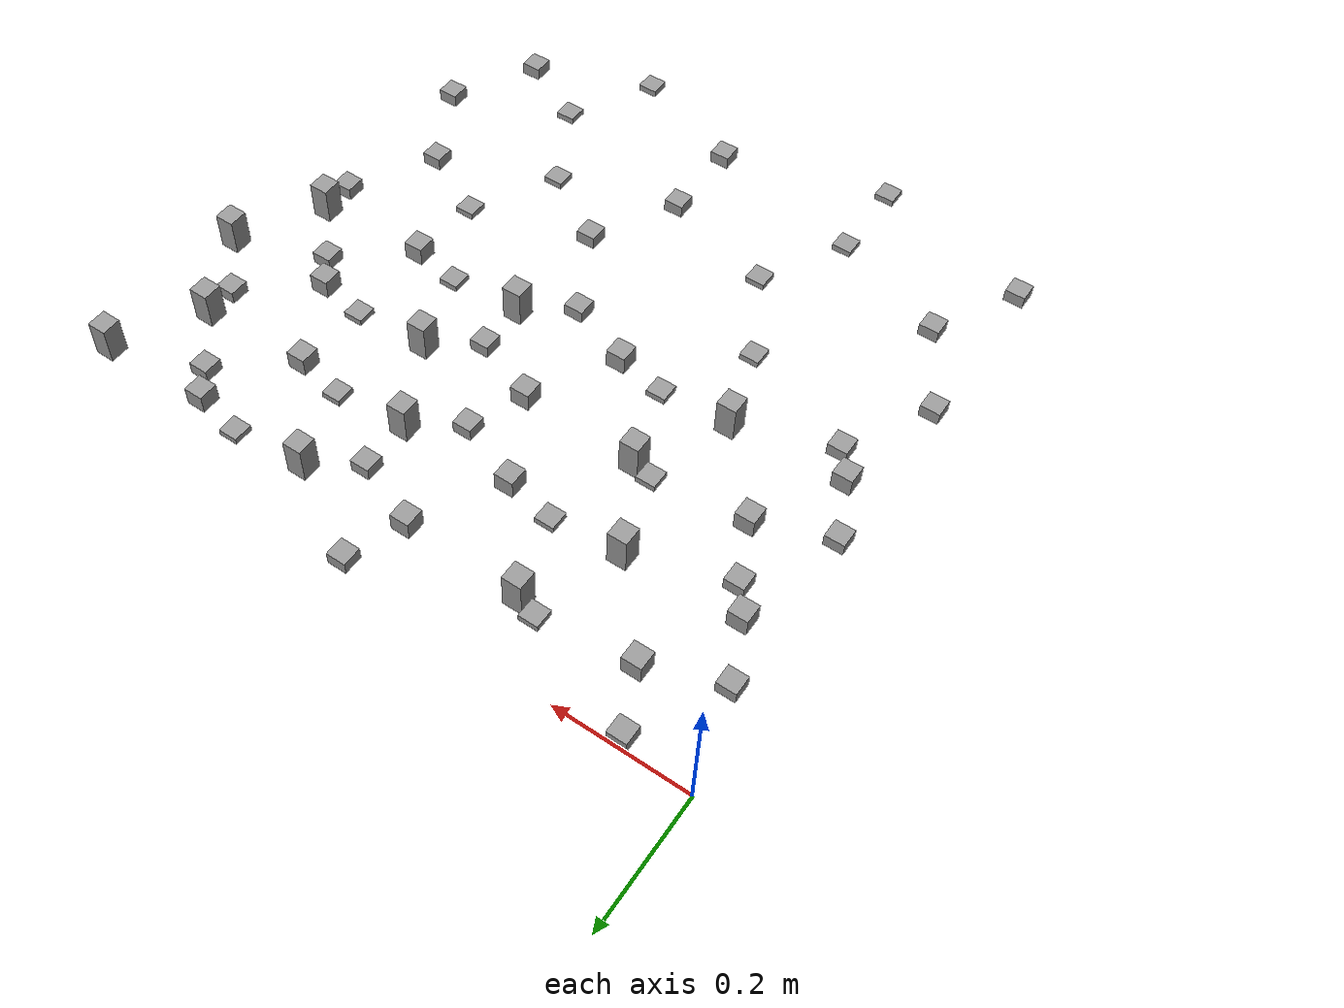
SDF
<sdf version="1.5">
 <world name="default">
  <model name="unit_box_48">
   <pose>0.0800000000000002 -0.5 0 0 0 0</pose>
   <link name="link">
    <inertial>
     <mass>1</mass>
     <inertia><ixx>0</ixx><ixy>0</ixy><ixz>0</ixz><iyy>0</iyy><iyz>0</iyz><izz>0</izz></inertia>
    </inertial>
    <collision name="collision"><geometry><box><size>0.03 0.03 0.03</size></box></geometry></collision>
    <visual name="visual">
     <geometry><box><size>0.03 0.03 0.03</size></box></geometry>
     <material>
      <script><name>Gazebo/Grey</name><uri>file://media/materials/scripts/gazebo.material</uri></script>
     </material>
    </visual>
   </link>
  </model>
  <model name="unit_box_49">
   <pose>0.15 -0.37 0 0 0 0</pose>
   <link name="link">
    <inertial>
     <mass>1</mass>
     <inertia><ixx>0</ixx><ixy>0</ixy><ixz>0</ixz><iyy>0</iyy><iyz>0</iyz><izz>0</izz></inertia>
    </inertial>
    <collision name="collision"><geometry><box><size>0.03 0.03 0.03</size></box></geometry></collision>
    <visual name="visual">
     <geometry><box><size>0.03 0.03 0.03</size></box></geometry>
     <material>
      <script><name>Gazebo/Grey</name><uri>file://media/materials/scripts/gazebo.material</uri></script>
     </material>
    </visual>
   </link>
  </model>
  <model name="unit_box_50">
   <pose>0.0800000000000002 -0.24 0 0 0 0</pose>
   <link name="link">
    <inertial>
     <mass>1</mass>
     <inertia><ixx>0</ixx><ixy>0</ixy><ixz>0</ixz><iyy>0</iyy><iyz>0</iyz><izz>0</izz></inertia>
    </inertial>
    <collision name="collision"><geometry><box><size>0.03 0.03 0.03</size></box></geometry></collision>
    <visual name="visual">
     <geometry><box><size>0.03 0.03 0.03</size></box></geometry>
     <material>
      <script><name>Gazebo/Grey</name><uri>file://media/materials/scripts/gazebo.material</uri></script>
     </material>
    </visual>
   </link>
  </model>
  <model name="unit_box_51">
   <pose>0.15 -0.11 0 0 0 0</pose>
   <link name="link">
    <inertial>
     <mass>1</mass>
     <inertia><ixx>0</ixx><ixy>0</ixy><ixz>0</ixz><iyy>0</iyy><iyz>0</iyz><izz>0</izz></inertia>
    </inertial>
    <collision name="collision"><geometry><box><size>0.03 0.03 0.03</size></box></geometry></collision>
    <visual name="visual">
     <geometry><box><size>0.03 0.03 0.03</size></box></geometry>
     <material>
      <script><name>Gazebo/Grey</name><uri>file://media/materials/scripts/gazebo.material</uri></script>
     </material>
    </visual>
   </link>
  </model>
  <model name="unit_box_56">
   <pose>0.26 -0.5 0 0 0 0</pose>
   <link name="link">
    <inertial>
     <mass>1</mass>
     <inertia><ixx>0</ixx><ixy>0</ixy><ixz>0</ixz><iyy>0</iyy><iyz>0</iyz><izz>0</izz></inertia>
    </inertial>
    <collision name="collision"><geometry><box><size>0.03 0.03 0.06</size></box></geometry></collision>
    <visual name="visual">
     <geometry><box><size>0.03 0.03 0.06</size></box></geometry>
     <material>
      <script><name>Gazebo/Grey</name><uri>file://media/materials/scripts/gazebo.material</uri></script>
     </material>
    </visual>
   </link>
  </model>
  <model name="unit_box_57">
   <pose>0.33 -0.37 0 0 0 0</pose>
   <link name="link">
    <inertial>
     <mass>1</mass>
     <inertia><ixx>0</ixx><ixy>0</ixy><ixz>0</ixz><iyy>0</iyy><iyz>0</iyz><izz>0</izz></inertia>
    </inertial>
    <collision name="collision"><geometry><box><size>0.03 0.03 0.06</size></box></geometry></collision>
    <visual name="visual">
     <geometry><box><size>0.03 0.03 0.06</size></box></geometry>
     <material>
      <script><name>Gazebo/Grey</name><uri>file://media/materials/scripts/gazebo.material</uri></script>
     </material>
    </visual>
   </link>
  </model>
  <model name="unit_box_58">
   <pose>0.26 -0.24 0 0 0 0</pose>
   <link name="link">
    <inertial>
     <mass>1</mass>
     <inertia><ixx>0</ixx><ixy>0</ixy><ixz>0</ixz><iyy>0</iyy><iyz>0</iyz><izz>0</izz></inertia>
    </inertial>
    <collision name="collision"><geometry><box><size>0.03 0.03 0.06</size></box></geometry></collision>
    <visual name="visual">
     <geometry><box><size>0.03 0.03 0.06</size></box></geometry>
     <material>
      <script><name>Gazebo/Grey</name><uri>file://media/materials/scripts/gazebo.material</uri></script>
     </material>
    </visual>
   </link>
  </model>
  <model name="unit_box_59">
   <pose>0.33 -0.11 0 0 0 0</pose>
   <link name="link">
    <inertial>
     <mass>1</mass>
     <inertia><ixx>0</ixx><ixy>0</ixy><ixz>0</ixz><iyy>0</iyy><iyz>0</iyz><izz>0</izz></inertia>
    </inertial>
    <collision name="collision"><geometry><box><size>0.03 0.03 0.06</size></box></geometry></collision>
    <visual name="visual">
     <geometry><box><size>0.03 0.03 0.06</size></box></geometry>
     <material>
      <script><name>Gazebo/Grey</name><uri>file://media/materials/scripts/gazebo.material</uri></script>
     </material>
    </visual>
   </link>
  </model>
  <model name="unit_box_64">
   <pose>0.44 -0.5 0 0 0 0</pose>
   <link name="link">
    <inertial>
     <mass>1</mass>
     <inertia><ixx>0</ixx><ixy>0</ixy><ixz>0</ixz><iyy>0</iyy><iyz>0</iyz><izz>0</izz></inertia>
    </inertial>
    <collision name="collision"><geometry><box><size>0.03 0.03 0.03</size></box></geometry></collision>
    <visual name="visual">
     <geometry><box><size>0.03 0.03 0.03</size></box></geometry>
     <material>
      <script><name>Gazebo/Grey</name><uri>file://media/materials/scripts/gazebo.material</uri></script>
     </material>
    </visual>
   </link>
  </model>
  <model name="unit_box_65">
   <pose>0.51 -0.37 0 0 0 0</pose>
   <link name="link">
    <inertial>
     <mass>1</mass>
     <inertia><ixx>0</ixx><ixy>0</ixy><ixz>0</ixz><iyy>0</iyy><iyz>0</iyz><izz>0</izz></inertia>
    </inertial>
    <collision name="collision"><geometry><box><size>0.03 0.03 0.03</size></box></geometry></collision>
    <visual name="visual">
     <geometry><box><size>0.03 0.03 0.03</size></box></geometry>
     <material>
      <script><name>Gazebo/Grey</name><uri>file://media/materials/scripts/gazebo.material</uri></script>
     </material>
    </visual>
   </link>
  </model>
  <model name="unit_box_66">
   <pose>0.44 -0.24 0 0 0 0</pose>
   <link name="link">
    <inertial>
     <mass>1</mass>
     <inertia><ixx>0</ixx><ixy>0</ixy><ixz>0</ixz><iyy>0</iyy><iyz>0</iyz><izz>0</izz></inertia>
    </inertial>
    <collision name="collision"><geometry><box><size>0.03 0.03 0.03</size></box></geometry></collision>
    <visual name="visual">
     <geometry><box><size>0.03 0.03 0.03</size></box></geometry>
     <material>
      <script><name>Gazebo/Grey</name><uri>file://media/materials/scripts/gazebo.material</uri></script>
     </material>
    </visual>
   </link>
  </model>
  <model name="unit_box_67">
   <pose>0.51 -0.11 0 0 0 0</pose>
   <link name="link">
    <inertial>
     <mass>1</mass>
     <inertia><ixx>0</ixx><ixy>0</ixy><ixz>0</ixz><iyy>0</iyy><iyz>0</iyz><izz>0</izz></inertia>
    </inertial>
    <collision name="collision"><geometry><box><size>0.03 0.03 0.03</size></box></geometry></collision>
    <visual name="visual">
     <geometry><box><size>0.03 0.03 0.03</size></box></geometry>
     <material>
      <script><name>Gazebo/Grey</name><uri>file://media/materials/scripts/gazebo.material</uri></script>
     </material>
    </visual>
   </link>
  </model>
  <model name="unit_box_72">
   <pose>0.62 -0.5 0 0 0 0</pose>
   <link name="link">
    <inertial>
     <mass>1</mass>
     <inertia><ixx>0</ixx><ixy>0</ixy><ixz>0</ixz><iyy>0</iyy><iyz>0</iyz><izz>0</izz></inertia>
    </inertial>
    <collision name="collision"><geometry><box><size>0.03 0.03 0.06</size></box></geometry></collision>
    <visual name="visual">
     <geometry><box><size>0.03 0.03 0.06</size></box></geometry>
     <material>
      <script><name>Gazebo/Grey</name><uri>file://media/materials/scripts/gazebo.material</uri></script>
     </material>
    </visual>
   </link>
  </model>
  <model name="unit_box_73">
   <pose>0.69 -0.37 0 0 0 0</pose>
   <link name="link">
    <inertial>
     <mass>1</mass>
     <inertia><ixx>0</ixx><ixy>0</ixy><ixz>0</ixz><iyy>0</iyy><iyz>0</iyz><izz>0</izz></inertia>
    </inertial>
    <collision name="collision"><geometry><box><size>0.03 0.03 0.06</size></box></geometry></collision>
    <visual name="visual">
     <geometry><box><size>0.03 0.03 0.06</size></box></geometry>
     <material>
      <script><name>Gazebo/Grey</name><uri>file://media/materials/scripts/gazebo.material</uri></script>
     </material>
    </visual>
   </link>
  </model>
  <model name="unit_box_74">
   <pose>0.62 -0.24 0 0 0 0</pose>
   <link name="link">
    <inertial>
     <mass>1</mass>
     <inertia><ixx>0</ixx><ixy>0</ixy><ixz>0</ixz><iyy>0</iyy><iyz>0</iyz><izz>0</izz></inertia>
    </inertial>
    <collision name="collision"><geometry><box><size>0.03 0.03 0.06</size></box></geometry></collision>
    <visual name="visual">
     <geometry><box><size>0.03 0.03 0.06</size></box></geometry>
     <material>
      <script><name>Gazebo/Grey</name><uri>file://media/materials/scripts/gazebo.material</uri></script>
     </material>
    </visual>
   </link>
  </model>
  <model name="unit_box_75">
   <pose>0.69 -0.11 0 0 0 0</pose>
   <link name="link">
    <inertial>
     <mass>1</mass>
     <inertia><ixx>0</ixx><ixy>0</ixy><ixz>0</ixz><iyy>0</iyy><iyz>0</iyz><izz>0</izz></inertia>
    </inertial>
    <collision name="collision"><geometry><box><size>0.03 0.03 0.06</size></box></geometry></collision>
    <visual name="visual">
     <geometry><box><size>0.03 0.03 0.06</size></box></geometry>
     <material>
      <script><name>Gazebo/Grey</name><uri>file://media/materials/scripts/gazebo.material</uri></script>
     </material>
    </visual>
   </link>
  </model>
  <model name="unit_box_80">
   <pose>0.8 -0.5 0 0 0 0</pose>
   <link name="link">
    <inertial>
     <mass>1</mass>
     <inertia><ixx>0</ixx><ixy>0</ixy><ixz>0</ixz><iyy>0</iyy><iyz>0</iyz><izz>0</izz></inertia>
    </inertial>
    <collision name="collision"><geometry><box><size>0.03 0.03 0.03</size></box></geometry></collision>
    <visual name="visual">
     <geometry><box><size>0.03 0.03 0.03</size></box></geometry>
     <material>
      <script><name>Gazebo/Grey</name><uri>file://media/materials/scripts/gazebo.material</uri></script>
     </material>
    </visual>
   </link>
  </model>
  <model name="unit_box_81">
   <pose>0.87 -0.37 0 0 0 0</pose>
   <link name="link">
    <inertial>
     <mass>1</mass>
     <inertia><ixx>0</ixx><ixy>0</ixy><ixz>0</ixz><iyy>0</iyy><iyz>0</iyz><izz>0</izz></inertia>
    </inertial>
    <collision name="collision"><geometry><box><size>0.03 0.03 0.03</size></box></geometry></collision>
    <visual name="visual">
     <geometry><box><size>0.03 0.03 0.03</size></box></geometry>
     <material>
      <script><name>Gazebo/Grey</name><uri>file://media/materials/scripts/gazebo.material</uri></script>
     </material>
    </visual>
   </link>
  </model>
  <model name="unit_box_82">
   <pose>0.8 -0.24 0 0 0 0</pose>
   <link name="link">
    <inertial>
     <mass>1</mass>
     <inertia><ixx>0</ixx><ixy>0</ixy><ixz>0</ixz><iyy>0</iyy><iyz>0</iyz><izz>0</izz></inertia>
    </inertial>
    <collision name="collision"><geometry><box><size>0.03 0.03 0.03</size></box></geometry></collision>
    <visual name="visual">
     <geometry><box><size>0.03 0.03 0.03</size></box></geometry>
     <material>
      <script><name>Gazebo/Grey</name><uri>file://media/materials/scripts/gazebo.material</uri></script>
     </material>
    </visual>
   </link>
  </model>
  <model name="unit_box_83">
   <pose>0.87 -0.11 0 0 0 0</pose>
   <link name="link">
    <inertial>
     <mass>1</mass>
     <inertia><ixx>0</ixx><ixy>0</ixy><ixz>0</ixz><iyy>0</iyy><iyz>0</iyz><izz>0</izz></inertia>
    </inertial>
    <collision name="collision"><geometry><box><size>0.03 0.03 0.03</size></box></geometry></collision>
    <visual name="visual">
     <geometry><box><size>0.03 0.03 0.03</size></box></geometry>
     <material>
      <script><name>Gazebo/Grey</name><uri>file://media/materials/scripts/gazebo.material</uri></script>
     </material>
    </visual>
   </link>
  </model>
  <model name="unit_box_88">
   <pose>0.98 -0.5 0 0 0 0</pose>
   <link name="link">
    <inertial>
     <mass>1</mass>
     <inertia><ixx>0</ixx><ixy>0</ixy><ixz>0</ixz><iyy>0</iyy><iyz>0</iyz><izz>0</izz></inertia>
    </inertial>
    <collision name="collision"><geometry><box><size>0.03 0.03 0.06</size></box></geometry></collision>
    <visual name="visual">
     <geometry><box><size>0.03 0.03 0.06</size></box></geometry>
     <material>
      <script><name>Gazebo/Grey</name><uri>file://media/materials/scripts/gazebo.material</uri></script>
     </material>
    </visual>
   </link>
  </model>
  <model name="unit_box_89">
   <pose>1.05 -0.37 0 0 0 0</pose>
   <link name="link">
    <inertial>
     <mass>1</mass>
     <inertia><ixx>0</ixx><ixy>0</ixy><ixz>0</ixz><iyy>0</iyy><iyz>0</iyz><izz>0</izz></inertia>
    </inertial>
    <collision name="collision"><geometry><box><size>0.03 0.03 0.06</size></box></geometry></collision>
    <visual name="visual">
     <geometry><box><size>0.03 0.03 0.06</size></box></geometry>
     <material>
      <script><name>Gazebo/Grey</name><uri>file://media/materials/scripts/gazebo.material</uri></script>
     </material>
    </visual>
   </link>
  </model>
  <model name="unit_box_90">
   <pose>0.98 -0.24 0 0 0 0</pose>
   <link name="link">
    <inertial>
     <mass>1</mass>
     <inertia><ixx>0</ixx><ixy>0</ixy><ixz>0</ixz><iyy>0</iyy><iyz>0</iyz><izz>0</izz></inertia>
    </inertial>
    <collision name="collision"><geometry><box><size>0.03 0.03 0.06</size></box></geometry></collision>
    <visual name="visual">
     <geometry><box><size>0.03 0.03 0.06</size></box></geometry>
     <material>
      <script><name>Gazebo/Grey</name><uri>file://media/materials/scripts/gazebo.material</uri></script>
     </material>
    </visual>
   </link>
  </model>
  <model name="unit_box_91">
   <pose>1.05 -0.11 0 0 0 0</pose>
   <link name="link">
    <inertial>
     <mass>1</mass>
     <inertia><ixx>0</ixx><ixy>0</ixy><ixz>0</ixz><iyy>0</iyy><iyz>0</iyz><izz>0</izz></inertia>
    </inertial>
    <collision name="collision"><geometry><box><size>0.03 0.03 0.06</size></box></geometry></collision>
    <visual name="visual">
     <geometry><box><size>0.03 0.03 0.06</size></box></geometry>
     <material>
      <script><name>Gazebo/Grey</name><uri>file://media/materials/scripts/gazebo.material</uri></script>
     </material>
    </visual>
   </link>
  </model>
  <model name="unit_box_78">
   <pose>0.0400000000000001 -0.93 0 0 0 0</pose>
   <link name="link">
    <inertial>
     <mass>1</mass>
     <inertia><ixx>0</ixx><ixy>0</ixy><ixz>0</ixz><iyy>0</iyy><iyz>0</iyz><izz>0</izz></inertia>
    </inertial>
    <collision name="collision"><geometry><box><size>0.03 0.03 0.02</size></box></geometry></collision>
    <visual name="visual">
     <geometry><box><size>0.03 0.03 0.02</size></box></geometry>
     <material>
      <script><name>Gazebo/Grey</name><uri>file://media/materials/scripts/gazebo.material</uri></script>
     </material>
    </visual>
   </link>
  </model>
  <model name="unit_box_79">
   <pose>0.11 -0.8 0 0 0 0</pose>
   <link name="link">
    <inertial>
     <mass>1</mass>
     <inertia><ixx>0</ixx><ixy>0</ixy><ixz>0</ixz><iyy>0</iyy><iyz>0</iyz><izz>0</izz></inertia>
    </inertial>
    <collision name="collision"><geometry><box><size>0.03 0.03 0.02</size></box></geometry></collision>
    <visual name="visual">
     <geometry><box><size>0.03 0.03 0.02</size></box></geometry>
     <material>
      <script><name>Gazebo/Grey</name><uri>file://media/materials/scripts/gazebo.material</uri></script>
     </material>
    </visual>
   </link>
  </model>
  <model name="unit_box_80">
   <pose>0.0400000000000001 -0.67 0 0 0 0</pose>
   <link name="link">
    <inertial>
     <mass>1</mass>
     <inertia><ixx>0</ixx><ixy>0</ixy><ixz>0</ixz><iyy>0</iyy><iyz>0</iyz><izz>0</izz></inertia>
    </inertial>
    <collision name="collision"><geometry><box><size>0.03 0.03 0.02</size></box></geometry></collision>
    <visual name="visual">
     <geometry><box><size>0.03 0.03 0.02</size></box></geometry>
     <material>
      <script><name>Gazebo/Grey</name><uri>file://media/materials/scripts/gazebo.material</uri></script>
     </material>
    </visual>
   </link>
  </model>
  <model name="unit_box_81">
   <pose>0.11 -0.54 0 0 0 0</pose>
   <link name="link">
    <inertial>
     <mass>1</mass>
     <inertia><ixx>0</ixx><ixy>0</ixy><ixz>0</ixz><iyy>0</iyy><iyz>0</iyz><izz>0</izz></inertia>
    </inertial>
    <collision name="collision"><geometry><box><size>0.03 0.03 0.02</size></box></geometry></collision>
    <visual name="visual">
     <geometry><box><size>0.03 0.03 0.02</size></box></geometry>
     <material>
      <script><name>Gazebo/Grey</name><uri>file://media/materials/scripts/gazebo.material</uri></script>
     </material>
    </visual>
   </link>
  </model>
  <model name="unit_box_82">
   <pose>0.0400000000000001 -0.41 0 0 0 0</pose>
   <link name="link">
    <inertial>
     <mass>1</mass>
     <inertia><ixx>0</ixx><ixy>0</ixy><ixz>0</ixz><iyy>0</iyy><iyz>0</iyz><izz>0</izz></inertia>
    </inertial>
    <collision name="collision"><geometry><box><size>0.03 0.03 0.02</size></box></geometry></collision>
    <visual name="visual">
     <geometry><box><size>0.03 0.03 0.02</size></box></geometry>
     <material>
      <script><name>Gazebo/Grey</name><uri>file://media/materials/scripts/gazebo.material</uri></script>
     </material>
    </visual>
   </link>
  </model>
  <model name="unit_box_83">
   <pose>0.11 -0.28 0 0 0 0</pose>
   <link name="link">
    <inertial>
     <mass>1</mass>
     <inertia><ixx>0</ixx><ixy>0</ixy><ixz>0</ixz><iyy>0</iyy><iyz>0</iyz><izz>0</izz></inertia>
    </inertial>
    <collision name="collision"><geometry><box><size>0.03 0.03 0.02</size></box></geometry></collision>
    <visual name="visual">
     <geometry><box><size>0.03 0.03 0.02</size></box></geometry>
     <material>
      <script><name>Gazebo/Grey</name><uri>file://media/materials/scripts/gazebo.material</uri></script>
     </material>
    </visual>
   </link>
  </model>
  <model name="unit_box_84">
   <pose>0.0400000000000001 -0.15 0 0 0 0</pose>
   <link name="link">
    <inertial>
     <mass>1</mass>
     <inertia><ixx>0</ixx><ixy>0</ixy><ixz>0</ixz><iyy>0</iyy><iyz>0</iyz><izz>0</izz></inertia>
    </inertial>
    <collision name="collision"><geometry><box><size>0.03 0.03 0.02</size></box></geometry></collision>
    <visual name="visual">
     <geometry><box><size>0.03 0.03 0.02</size></box></geometry>
     <material>
      <script><name>Gazebo/Grey</name><uri>file://media/materials/scripts/gazebo.material</uri></script>
     </material>
    </visual>
   </link>
  </model>
  <model name="unit_box_85">
   <pose>0.11 -0.02 0 0 0 0</pose>
   <link name="link">
    <inertial>
     <mass>1</mass>
     <inertia><ixx>0</ixx><ixy>0</ixy><ixz>0</ixz><iyy>0</iyy><iyz>0</iyz><izz>0</izz></inertia>
    </inertial>
    <collision name="collision"><geometry><box><size>0.03 0.03 0.02</size></box></geometry></collision>
    <visual name="visual">
     <geometry><box><size>0.03 0.03 0.02</size></box></geometry>
     <material>
      <script><name>Gazebo/Grey</name><uri>file://media/materials/scripts/gazebo.material</uri></script>
     </material>
    </visual>
   </link>
  </model>
  <model name="unit_box_93">
   <pose>0.29 -1 0 0 0 0</pose>
   <link name="link">
    <inertial>
     <mass>1</mass>
     <inertia><ixx>0</ixx><ixy>0</ixy><ixz>0</ixz><iyy>0</iyy><iyz>0</iyz><izz>0</izz></inertia>
    </inertial>
    <collision name="collision"><geometry><box><size>0.03 0.03 0.01</size></box></geometry></collision>
    <visual name="visual">
     <geometry><box><size>0.03 0.03 0.01</size></box></geometry>
     <material>
      <script><name>Gazebo/Grey</name><uri>file://media/materials/scripts/gazebo.material</uri></script>
     </material>
    </visual>
   </link>
  </model>
  <model name="unit_box_94">
   <pose>0.29 -0.87 0 0 0 0</pose>
   <link name="link">
    <inertial>
     <mass>1</mass>
     <inertia><ixx>0</ixx><ixy>0</ixy><ixz>0</ixz><iyy>0</iyy><iyz>0</iyz><izz>0</izz></inertia>
    </inertial>
    <collision name="collision"><geometry><box><size>0.03 0.03 0.01</size></box></geometry></collision>
    <visual name="visual">
     <geometry><box><size>0.03 0.03 0.01</size></box></geometry>
     <material>
      <script><name>Gazebo/Grey</name><uri>file://media/materials/scripts/gazebo.material</uri></script>
     </material>
    </visual>
   </link>
  </model>
  <model name="unit_box_95">
   <pose>0.36 -0.74 0 0 0 0</pose>
   <link name="link">
    <inertial>
     <mass>1</mass>
     <inertia><ixx>0</ixx><ixy>0</ixy><ixz>0</ixz><iyy>0</iyy><iyz>0</iyz><izz>0</izz></inertia>
    </inertial>
    <collision name="collision"><geometry><box><size>0.03 0.03 0.01</size></box></geometry></collision>
    <visual name="visual">
     <geometry><box><size>0.03 0.03 0.01</size></box></geometry>
     <material>
      <script><name>Gazebo/Grey</name><uri>file://media/materials/scripts/gazebo.material</uri></script>
     </material>
    </visual>
   </link>
  </model>
  <model name="unit_box_96">
   <pose>0.29 -0.61 0 0 0 0</pose>
   <link name="link">
    <inertial>
     <mass>1</mass>
     <inertia><ixx>0</ixx><ixy>0</ixy><ixz>0</ixz><iyy>0</iyy><iyz>0</iyz><izz>0</izz></inertia>
    </inertial>
    <collision name="collision"><geometry><box><size>0.03 0.03 0.01</size></box></geometry></collision>
    <visual name="visual">
     <geometry><box><size>0.03 0.03 0.01</size></box></geometry>
     <material>
      <script><name>Gazebo/Grey</name><uri>file://media/materials/scripts/gazebo.material</uri></script>
     </material>
    </visual>
   </link>
  </model>
  <model name="unit_box_97">
   <pose>0.36 -0.48 0 0 0 0</pose>
   <link name="link">
    <inertial>
     <mass>1</mass>
     <inertia><ixx>0</ixx><ixy>0</ixy><ixz>0</ixz><iyy>0</iyy><iyz>0</iyz><izz>0</izz></inertia>
    </inertial>
    <collision name="collision"><geometry><box><size>0.03 0.03 0.01</size></box></geometry></collision>
    <visual name="visual">
     <geometry><box><size>0.03 0.03 0.01</size></box></geometry>
     <material>
      <script><name>Gazebo/Grey</name><uri>file://media/materials/scripts/gazebo.material</uri></script>
     </material>
    </visual>
   </link>
  </model>
  <model name="unit_box_98">
   <pose>0.29 -0.35 0 0 0 0</pose>
   <link name="link">
    <inertial>
     <mass>1</mass>
     <inertia><ixx>0</ixx><ixy>0</ixy><ixz>0</ixz><iyy>0</iyy><iyz>0</iyz><izz>0</izz></inertia>
    </inertial>
    <collision name="collision"><geometry><box><size>0.03 0.03 0.01</size></box></geometry></collision>
    <visual name="visual">
     <geometry><box><size>0.03 0.03 0.01</size></box></geometry>
     <material>
      <script><name>Gazebo/Grey</name><uri>file://media/materials/scripts/gazebo.material</uri></script>
     </material>
    </visual>
   </link>
  </model>
  <model name="unit_box_99">
   <pose>0.36 -0.22 0 0 0 0</pose>
   <link name="link">
    <inertial>
     <mass>1</mass>
     <inertia><ixx>0</ixx><ixy>0</ixy><ixz>0</ixz><iyy>0</iyy><iyz>0</iyz><izz>0</izz></inertia>
    </inertial>
    <collision name="collision"><geometry><box><size>0.03 0.03 0.01</size></box></geometry></collision>
    <visual name="visual">
     <geometry><box><size>0.03 0.03 0.01</size></box></geometry>
     <material>
      <script><name>Gazebo/Grey</name><uri>file://media/materials/scripts/gazebo.material</uri></script>
     </material>
    </visual>
   </link>
  </model>
  <model name="unit_box_100">
   <pose>0.29 -0.0899999999999999 0 0 0 0</pose>
   <link name="link">
    <inertial>
     <mass>1</mass>
     <inertia><ixx>0</ixx><ixy>0</ixy><ixz>0</ixz><iyy>0</iyy><iyz>0</iyz><izz>0</izz></inertia>
    </inertial>
    <collision name="collision"><geometry><box><size>0.03 0.03 0.01</size></box></geometry></collision>
    <visual name="visual">
     <geometry><box><size>0.03 0.03 0.01</size></box></geometry>
     <material>
      <script><name>Gazebo/Grey</name><uri>file://media/materials/scripts/gazebo.material</uri></script>
     </material>
    </visual>
   </link>
  </model>
  <model name="unit_box_109">
   <pose>0.54 -0.93 0 0 0 0</pose>
   <link name="link">
    <inertial>
     <mass>1</mass>
     <inertia><ixx>0</ixx><ixy>0</ixy><ixz>0</ixz><iyy>0</iyy><iyz>0</iyz><izz>0</izz></inertia>
    </inertial>
    <collision name="collision"><geometry><box><size>0.03 0.03 0.02</size></box></geometry></collision>
    <visual name="visual">
     <geometry><box><size>0.03 0.03 0.02</size></box></geometry>
     <material>
      <script><name>Gazebo/Grey</name><uri>file://media/materials/scripts/gazebo.material</uri></script>
     </material>
    </visual>
   </link>
  </model>
  <model name="unit_box_110">
   <pose>0.54 -0.8 0 0 0 0</pose>
   <link name="link">
    <inertial>
     <mass>1</mass>
     <inertia><ixx>0</ixx><ixy>0</ixy><ixz>0</ixz><iyy>0</iyy><iyz>0</iyz><izz>0</izz></inertia>
    </inertial>
    <collision name="collision"><geometry><box><size>0.03 0.03 0.02</size></box></geometry></collision>
    <visual name="visual">
     <geometry><box><size>0.03 0.03 0.02</size></box></geometry>
     <material>
      <script><name>Gazebo/Grey</name><uri>file://media/materials/scripts/gazebo.material</uri></script>
     </material>
    </visual>
   </link>
  </model>
  <model name="unit_box_111">
   <pose>0.61 -0.67 0 0 0 0</pose>
   <link name="link">
    <inertial>
     <mass>1</mass>
     <inertia><ixx>0</ixx><ixy>0</ixy><ixz>0</ixz><iyy>0</iyy><iyz>0</iyz><izz>0</izz></inertia>
    </inertial>
    <collision name="collision"><geometry><box><size>0.03 0.03 0.02</size></box></geometry></collision>
    <visual name="visual">
     <geometry><box><size>0.03 0.03 0.02</size></box></geometry>
     <material>
      <script><name>Gazebo/Grey</name><uri>file://media/materials/scripts/gazebo.material</uri></script>
     </material>
    </visual>
   </link>
  </model>
  <model name="unit_box_112">
   <pose>0.54 -0.54 0 0 0 0</pose>
   <link name="link">
    <inertial>
     <mass>1</mass>
     <inertia><ixx>0</ixx><ixy>0</ixy><ixz>0</ixz><iyy>0</iyy><iyz>0</iyz><izz>0</izz></inertia>
    </inertial>
    <collision name="collision"><geometry><box><size>0.03 0.03 0.02</size></box></geometry></collision>
    <visual name="visual">
     <geometry><box><size>0.03 0.03 0.02</size></box></geometry>
     <material>
      <script><name>Gazebo/Grey</name><uri>file://media/materials/scripts/gazebo.material</uri></script>
     </material>
    </visual>
   </link>
  </model>
  <model name="unit_box_113">
   <pose>0.61 -0.41 0 0 0 0</pose>
   <link name="link">
    <inertial>
     <mass>1</mass>
     <inertia><ixx>0</ixx><ixy>0</ixy><ixz>0</ixz><iyy>0</iyy><iyz>0</iyz><izz>0</izz></inertia>
    </inertial>
    <collision name="collision"><geometry><box><size>0.03 0.03 0.02</size></box></geometry></collision>
    <visual name="visual">
     <geometry><box><size>0.03 0.03 0.02</size></box></geometry>
     <material>
      <script><name>Gazebo/Grey</name><uri>file://media/materials/scripts/gazebo.material</uri></script>
     </material>
    </visual>
   </link>
  </model>
  <model name="unit_box_114">
   <pose>0.54 -0.28 0 0 0 0</pose>
   <link name="link">
    <inertial>
     <mass>1</mass>
     <inertia><ixx>0</ixx><ixy>0</ixy><ixz>0</ixz><iyy>0</iyy><iyz>0</iyz><izz>0</izz></inertia>
    </inertial>
    <collision name="collision"><geometry><box><size>0.03 0.03 0.02</size></box></geometry></collision>
    <visual name="visual">
     <geometry><box><size>0.03 0.03 0.02</size></box></geometry>
     <material>
      <script><name>Gazebo/Grey</name><uri>file://media/materials/scripts/gazebo.material</uri></script>
     </material>
    </visual>
   </link>
  </model>
  <model name="unit_box_115">
   <pose>0.61 -0.15 0 0 0 0</pose>
   <link name="link">
    <inertial>
     <mass>1</mass>
     <inertia><ixx>0</ixx><ixy>0</ixy><ixz>0</ixz><iyy>0</iyy><iyz>0</iyz><izz>0</izz></inertia>
    </inertial>
    <collision name="collision"><geometry><box><size>0.03 0.03 0.02</size></box></geometry></collision>
    <visual name="visual">
     <geometry><box><size>0.03 0.03 0.02</size></box></geometry>
     <material>
      <script><name>Gazebo/Grey</name><uri>file://media/materials/scripts/gazebo.material</uri></script>
     </material>
    </visual>
   </link>
  </model>
  <model name="unit_box_116">
   <pose>0.54 -0.02 0 0 0 0</pose>
   <link name="link">
    <inertial>
     <mass>1</mass>
     <inertia><ixx>0</ixx><ixy>0</ixy><ixz>0</ixz><iyy>0</iyy><iyz>0</iyz><izz>0</izz></inertia>
    </inertial>
    <collision name="collision"><geometry><box><size>0.03 0.03 0.02</size></box></geometry></collision>
    <visual name="visual">
     <geometry><box><size>0.03 0.03 0.02</size></box></geometry>
     <material>
      <script><name>Gazebo/Grey</name><uri>file://media/materials/scripts/gazebo.material</uri></script>
     </material>
    </visual>
   </link>
  </model>
  <model name="unit_box_124">
   <pose>0.72 -1 0 0 0 0</pose>
   <link name="link">
    <inertial>
     <mass>1</mass>
     <inertia><ixx>0</ixx><ixy>0</ixy><ixz>0</ixz><iyy>0</iyy><iyz>0</iyz><izz>0</izz></inertia>
    </inertial>
    <collision name="collision"><geometry><box><size>0.03 0.03 0.01</size></box></geometry></collision>
    <visual name="visual">
     <geometry><box><size>0.03 0.03 0.01</size></box></geometry>
     <material>
      <script><name>Gazebo/Grey</name><uri>file://media/materials/scripts/gazebo.material</uri></script>
     </material>
    </visual>
   </link>
  </model>
  <model name="unit_box_125">
   <pose>0.79 -0.87 0 0 0 0</pose>
   <link name="link">
    <inertial>
     <mass>1</mass>
     <inertia><ixx>0</ixx><ixy>0</ixy><ixz>0</ixz><iyy>0</iyy><iyz>0</iyz><izz>0</izz></inertia>
    </inertial>
    <collision name="collision"><geometry><box><size>0.03 0.03 0.01</size></box></geometry></collision>
    <visual name="visual">
     <geometry><box><size>0.03 0.03 0.01</size></box></geometry>
     <material>
      <script><name>Gazebo/Grey</name><uri>file://media/materials/scripts/gazebo.material</uri></script>
     </material>
    </visual>
   </link>
  </model>
  <model name="unit_box_126">
   <pose>0.72 -0.74 0 0 0 0</pose>
   <link name="link">
    <inertial>
     <mass>1</mass>
     <inertia><ixx>0</ixx><ixy>0</ixy><ixz>0</ixz><iyy>0</iyy><iyz>0</iyz><izz>0</izz></inertia>
    </inertial>
    <collision name="collision"><geometry><box><size>0.03 0.03 0.01</size></box></geometry></collision>
    <visual name="visual">
     <geometry><box><size>0.03 0.03 0.01</size></box></geometry>
     <material>
      <script><name>Gazebo/Grey</name><uri>file://media/materials/scripts/gazebo.material</uri></script>
     </material>
    </visual>
   </link>
  </model>
  <model name="unit_box_127">
   <pose>0.79 -0.61 0 0 0 0</pose>
   <link name="link">
    <inertial>
     <mass>1</mass>
     <inertia><ixx>0</ixx><ixy>0</ixy><ixz>0</ixz><iyy>0</iyy><iyz>0</iyz><izz>0</izz></inertia>
    </inertial>
    <collision name="collision"><geometry><box><size>0.03 0.03 0.01</size></box></geometry></collision>
    <visual name="visual">
     <geometry><box><size>0.03 0.03 0.01</size></box></geometry>
     <material>
      <script><name>Gazebo/Grey</name><uri>file://media/materials/scripts/gazebo.material</uri></script>
     </material>
    </visual>
   </link>
  </model>
  <model name="unit_box_128">
   <pose>0.72 -0.48 0 0 0 0</pose>
   <link name="link">
    <inertial>
     <mass>1</mass>
     <inertia><ixx>0</ixx><ixy>0</ixy><ixz>0</ixz><iyy>0</iyy><iyz>0</iyz><izz>0</izz></inertia>
    </inertial>
    <collision name="collision"><geometry><box><size>0.03 0.03 0.01</size></box></geometry></collision>
    <visual name="visual">
     <geometry><box><size>0.03 0.03 0.01</size></box></geometry>
     <material>
      <script><name>Gazebo/Grey</name><uri>file://media/materials/scripts/gazebo.material</uri></script>
     </material>
    </visual>
   </link>
  </model>
  <model name="unit_box_129">
   <pose>0.79 -0.35 0 0 0 0</pose>
   <link name="link">
    <inertial>
     <mass>1</mass>
     <inertia><ixx>0</ixx><ixy>0</ixy><ixz>0</ixz><iyy>0</iyy><iyz>0</iyz><izz>0</izz></inertia>
    </inertial>
    <collision name="collision"><geometry><box><size>0.03 0.03 0.01</size></box></geometry></collision>
    <visual name="visual">
     <geometry><box><size>0.03 0.03 0.01</size></box></geometry>
     <material>
      <script><name>Gazebo/Grey</name><uri>file://media/materials/scripts/gazebo.material</uri></script>
     </material>
    </visual>
   </link>
  </model>
  <model name="unit_box_130">
   <pose>0.72 -0.22 0 0 0 0</pose>
   <link name="link">
    <inertial>
     <mass>1</mass>
     <inertia><ixx>0</ixx><ixy>0</ixy><ixz>0</ixz><iyy>0</iyy><iyz>0</iyz><izz>0</izz></inertia>
    </inertial>
    <collision name="collision"><geometry><box><size>0.03 0.03 0.01</size></box></geometry></collision>
    <visual name="visual">
     <geometry><box><size>0.03 0.03 0.01</size></box></geometry>
     <material>
      <script><name>Gazebo/Grey</name><uri>file://media/materials/scripts/gazebo.material</uri></script>
     </material>
    </visual>
   </link>
  </model>
  <model name="unit_box_131">
   <pose>0.79 -0.0899999999999999 0 0 0 0</pose>
   <link name="link">
    <inertial>
     <mass>1</mass>
     <inertia><ixx>0</ixx><ixy>0</ixy><ixz>0</ixz><iyy>0</iyy><iyz>0</iyz><izz>0</izz></inertia>
    </inertial>
    <collision name="collision"><geometry><box><size>0.03 0.03 0.01</size></box></geometry></collision>
    <visual name="visual">
     <geometry><box><size>0.03 0.03 0.01</size></box></geometry>
     <material>
      <script><name>Gazebo/Grey</name><uri>file://media/materials/scripts/gazebo.material</uri></script>
     </material>
    </visual>
   </link>
  </model>
  <model name="unit_box_140">
   <pose>0.9 -0.93 0 0 0 0</pose>
   <link name="link">
    <inertial>
     <mass>1</mass>
     <inertia><ixx>0</ixx><ixy>0</ixy><ixz>0</ixz><iyy>0</iyy><iyz>0</iyz><izz>0</izz></inertia>
    </inertial>
    <collision name="collision"><geometry><box><size>0.03 0.03 0.02</size></box></geometry></collision>
    <visual name="visual">
     <geometry><box><size>0.03 0.03 0.02</size></box></geometry>
     <material>
      <script><name>Gazebo/Grey</name><uri>file://media/materials/scripts/gazebo.material</uri></script>
     </material>
    </visual>
   </link>
  </model>
  <model name="unit_box_141">
   <pose>0.97 -0.8 0 0 0 0</pose>
   <link name="link">
    <inertial>
     <mass>1</mass>
     <inertia><ixx>0</ixx><ixy>0</ixy><ixz>0</ixz><iyy>0</iyy><iyz>0</iyz><izz>0</izz></inertia>
    </inertial>
    <collision name="collision"><geometry><box><size>0.03 0.03 0.02</size></box></geometry></collision>
    <visual name="visual">
     <geometry><box><size>0.03 0.03 0.02</size></box></geometry>
     <material>
      <script><name>Gazebo/Grey</name><uri>file://media/materials/scripts/gazebo.material</uri></script>
     </material>
    </visual>
   </link>
  </model>
  <model name="unit_box_142">
   <pose>0.9 -0.67 0 0 0 0</pose>
   <link name="link">
    <inertial>
     <mass>1</mass>
     <inertia><ixx>0</ixx><ixy>0</ixy><ixz>0</ixz><iyy>0</iyy><iyz>0</iyz><izz>0</izz></inertia>
    </inertial>
    <collision name="collision"><geometry><box><size>0.03 0.03 0.02</size></box></geometry></collision>
    <visual name="visual">
     <geometry><box><size>0.03 0.03 0.02</size></box></geometry>
     <material>
      <script><name>Gazebo/Grey</name><uri>file://media/materials/scripts/gazebo.material</uri></script>
     </material>
    </visual>
   </link>
  </model>
  <model name="unit_box_143">
   <pose>0.97 -0.54 0 0 0 0</pose>
   <link name="link">
    <inertial>
     <mass>1</mass>
     <inertia><ixx>0</ixx><ixy>0</ixy><ixz>0</ixz><iyy>0</iyy><iyz>0</iyz><izz>0</izz></inertia>
    </inertial>
    <collision name="collision"><geometry><box><size>0.03 0.03 0.02</size></box></geometry></collision>
    <visual name="visual">
     <geometry><box><size>0.03 0.03 0.02</size></box></geometry>
     <material>
      <script><name>Gazebo/Grey</name><uri>file://media/materials/scripts/gazebo.material</uri></script>
     </material>
    </visual>
   </link>
  </model>
  <model name="unit_box_144">
   <pose>0.9 -0.41 0 0 0 0</pose>
   <link name="link">
    <inertial>
     <mass>1</mass>
     <inertia><ixx>0</ixx><ixy>0</ixy><ixz>0</ixz><iyy>0</iyy><iyz>0</iyz><izz>0</izz></inertia>
    </inertial>
    <collision name="collision"><geometry><box><size>0.03 0.03 0.02</size></box></geometry></collision>
    <visual name="visual">
     <geometry><box><size>0.03 0.03 0.02</size></box></geometry>
     <material>
      <script><name>Gazebo/Grey</name><uri>file://media/materials/scripts/gazebo.material</uri></script>
     </material>
    </visual>
   </link>
  </model>
  <model name="unit_box_145">
   <pose>0.97 -0.28 0 0 0 0</pose>
   <link name="link">
    <inertial>
     <mass>1</mass>
     <inertia><ixx>0</ixx><ixy>0</ixy><ixz>0</ixz><iyy>0</iyy><iyz>0</iyz><izz>0</izz></inertia>
    </inertial>
    <collision name="collision"><geometry><box><size>0.03 0.03 0.02</size></box></geometry></collision>
    <visual name="visual">
     <geometry><box><size>0.03 0.03 0.02</size></box></geometry>
     <material>
      <script><name>Gazebo/Grey</name><uri>file://media/materials/scripts/gazebo.material</uri></script>
     </material>
    </visual>
   </link>
  </model>
  <model name="unit_box_146">
   <pose>0.9 -0.15 0 0 0 0</pose>
   <link name="link">
    <inertial>
     <mass>1</mass>
     <inertia><ixx>0</ixx><ixy>0</ixy><ixz>0</ixz><iyy>0</iyy><iyz>0</iyz><izz>0</izz></inertia>
    </inertial>
    <collision name="collision"><geometry><box><size>0.03 0.03 0.02</size></box></geometry></collision>
    <visual name="visual">
     <geometry><box><size>0.03 0.03 0.02</size></box></geometry>
     <material>
      <script><name>Gazebo/Grey</name><uri>file://media/materials/scripts/gazebo.material</uri></script>
     </material>
    </visual>
   </link>
  </model>
  <include><uri>model://sun</uri></include>
 </world>
</sdf>
